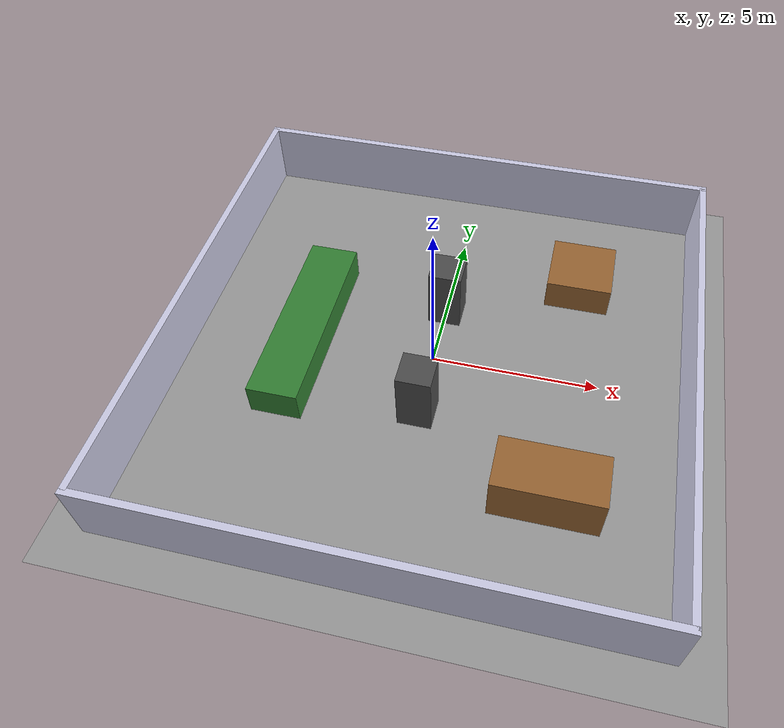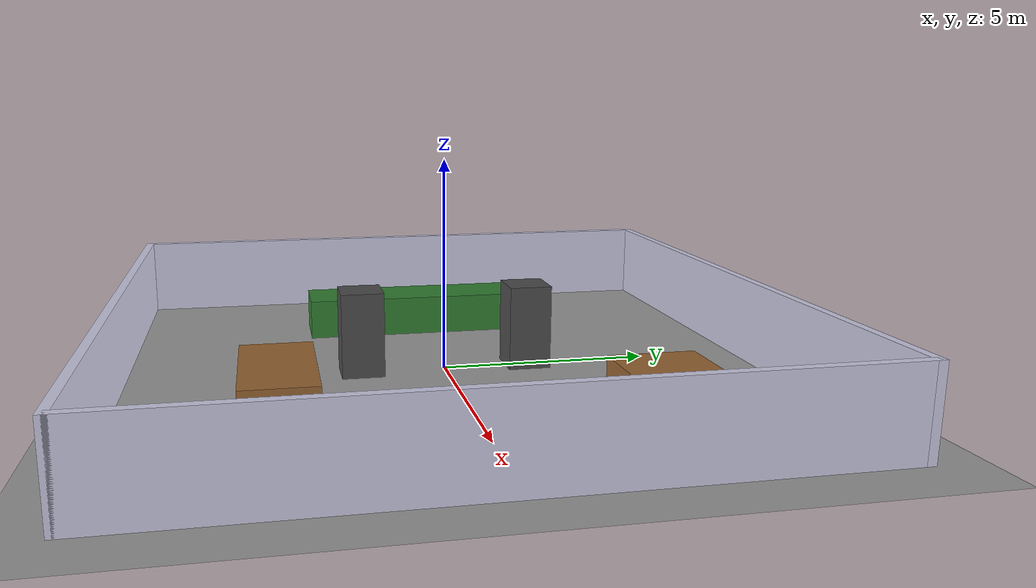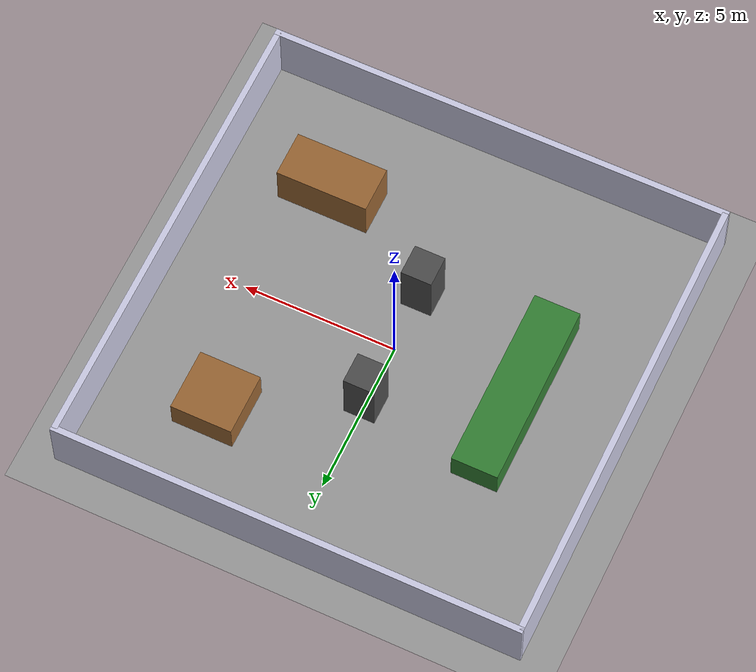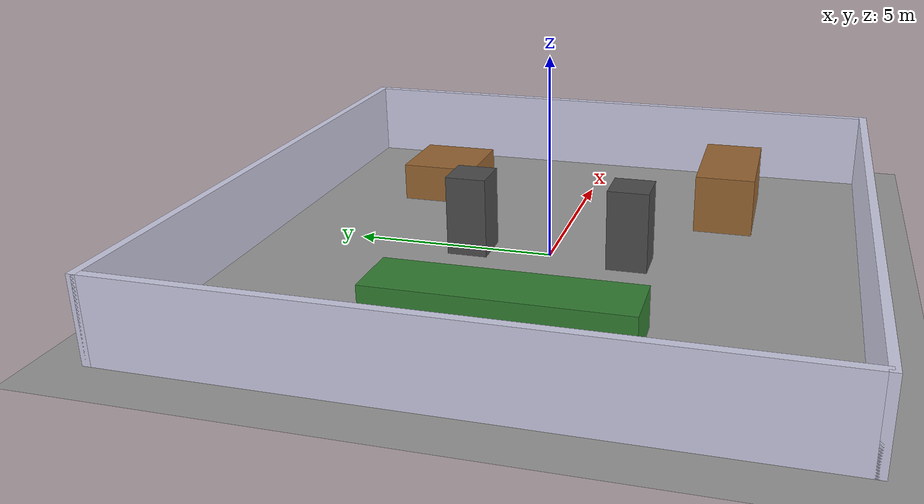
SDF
<?xml version="1.0" ?>
<sdf version="1.8">
    <world name="factory_world">
        <physics name="1ms" type="ignored">
            <max_step_size>0.001</max_step_size>
            <real_time_factor>1.0</real_time_factor>
        </physics>
        <plugin filename="gz-sim-physics-system" name="gz::sim::systems::Physics"></plugin>
        <plugin filename="gz-sim-user-commands-system" name="gz::sim::systems::UserCommands"></plugin>
        <plugin filename="gz-sim-scene-broadcaster-system" name="gz::sim::systems::SceneBroadcaster"></plugin>

        <light type="directional" name="sun">
            <cast_shadows>true</cast_shadows>
            <pose>0 0 10 0 0 0</pose>
            <diffuse>0.8 0.8 0.8 1</diffuse>
            <specular>0.2 0.2 0.2 1</specular>
            <attenuation><range>1000</range><constant>0.9</constant><linear>0.01</linear><quadratic>0.001</quadratic></attenuation>
            <direction>-0.5 0.1 -0.9</direction>
        </light>

        <model name="ground_plane">
            <static>true</static>
            <link name="link">
                <collision name="collision"><geometry><plane><normal>0 0 1</normal><size>100 100</size></plane></geometry></collision>
                <visual name="visual">
                    <geometry><plane><normal>0 0 1</normal><size>100 100</size></plane></geometry>
                    <material>
                        <ambient>0.6 0.6 0.6 1</ambient>
                        <diffuse>0.6 0.6 0.6 1</diffuse>
                        <specular>0.1 0.1 0.1 1</specular>
                    </material>
                </visual>
            </link>
        </model>

        <model name="factory_walls">
            <static>true</static>
            <link name="wall_north">
                <pose>0 7.5 1 0 0 0</pose>
                <collision name="col"><geometry><box><size>15.2 0.2 2</size></box></geometry></collision>
                <visual name="vis"><geometry><box><size>15.2 0.2 2</size></box></geometry><material><ambient>0.8 0.8 0.9 1</ambient></material></visual>
            </link>
            <link name="wall_south">
                <pose>0 -7.5 1 0 0 0</pose>
                <collision name="col"><geometry><box><size>15.2 0.2 2</size></box></geometry></collision>
                <visual name="vis"><geometry><box><size>15.2 0.2 2</size></box></geometry><material><ambient>0.8 0.8 0.9 1</ambient></material></visual>
            </link>
            <link name="wall_east">
                <pose>7.5 0 1 0 0 0</pose>
                <collision name="col"><geometry><box><size>0.2 15 2</size></box></geometry></collision>
                <visual name="vis"><geometry><box><size>0.2 15 2</size></box></geometry><material><ambient>0.8 0.8 0.9 1</ambient></material></visual>
            </link>
            <link name="wall_west">
                <pose>-7.5 0 1 0 0 0</pose>
                <collision name="col"><geometry><box><size>0.2 15 2</size></box></geometry></collision>
                <visual name="vis"><geometry><box><size>0.2 15 2</size></box></geometry><material><ambient>0.8 0.8 0.9 1</ambient></material></visual>
            </link>
        </model>

        <model name="main_pillar_1">
            <pose>0 2 1 0 0 0</pose>
            <static>true</static>
            <link name="link">
                <collision name="col"><geometry><box><size>1 1 2</size></box></geometry></collision>
                <visual name="vis"><geometry><box><size>1 1 2</size></box></geometry><material><ambient>0.3 0.3 0.3 1</ambient></material></visual>
            </link>
        </model>
        <model name="main_pillar_2">
            <pose>0 -2 1 0 0 0</pose>
            <static>true</static>
            <link name="link">
                <collision name="col"><geometry><box><size>1 1 2</size></box></geometry></collision>
                <visual name="vis"><geometry><box><size>1 1 2</size></box></geometry><material><ambient>0.3 0.3 0.3 1</ambient></material></visual>
            </link>
        </model>

        <model name="conveyor_belt">
            <pose>-4 0 0.5 0 0 0</pose>
            <static>true</static>
            <link name="link">
                <collision name="col"><geometry><box><size>1.5 6 1</size></box></geometry></collision>
                <visual name="vis"><geometry><box><size>1.5 6 1</size></box></geometry><material><ambient>0.2 0.5 0.2 1</ambient></material></visual>
            </link>
        </model>

        <model name="cargo_pallet_1">
            <pose>4 4 0.5 0 0 0</pose>
            <static>true</static>
            <link name="link">
                <collision name="col"><geometry><box><size>2 2 1</size></box></geometry></collision>
                <visual name="vis"><geometry><box><size>2 2 1</size></box></geometry><material><ambient>0.6 0.4 0.2 1</ambient></material></visual>
            </link>
        </model>
        <model name="cargo_pallet_2">
            <pose>4 -4 0.75 0 0 0</pose>
            <static>true</static>
            <link name="link">
                <collision name="col"><geometry><box><size>3 1.5 1.5</size></box></geometry></collision>
                <visual name="vis"><geometry><box><size>3 1.5 1.5</size></box></geometry><material><ambient>0.6 0.4 0.2 1</ambient></material></visual>
            </link>
        </model>

    </world>
</sdf>
